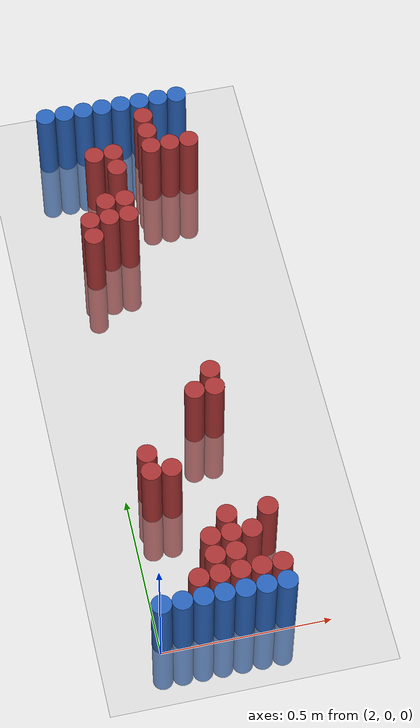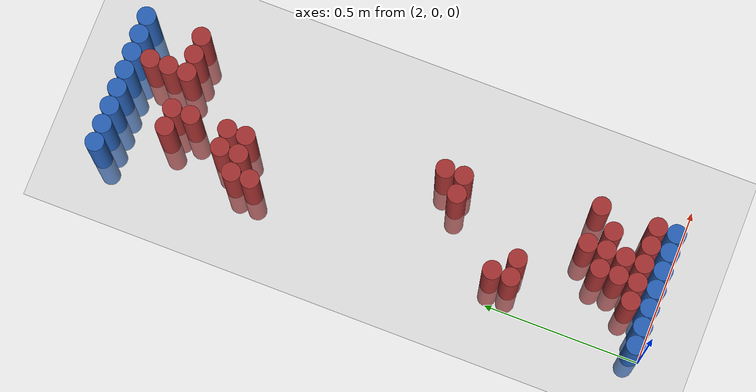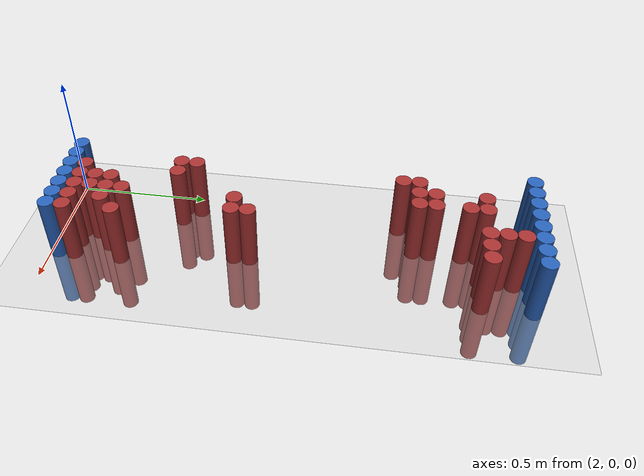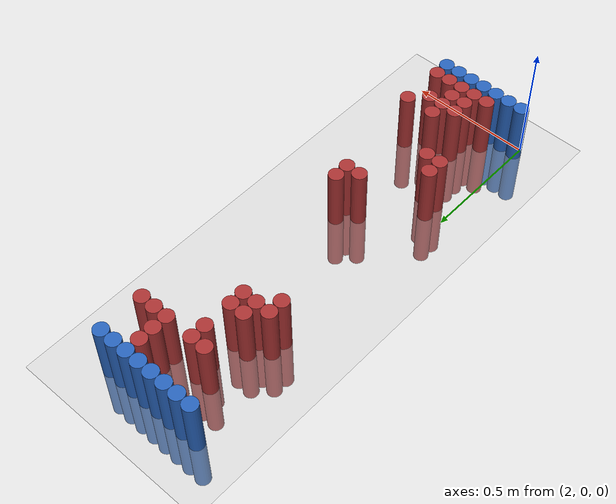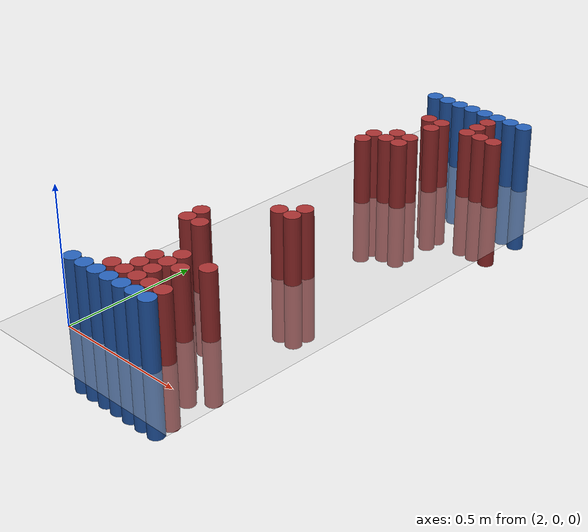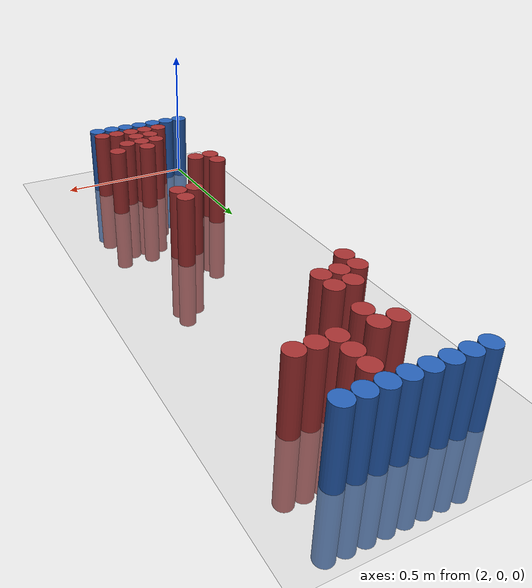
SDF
<sdf version="1.6">
 <world name="default">
  <model name="ground_plane">
   <static>1</static>
   <link name="link">
    <collision name="collision">
     <geometry><plane><normal>0 0 1</normal><size>100 100</size></plane></geometry>
     <surface><friction><ode><mu>100</mu><mu2>50</mu2></ode></friction></surface>
    </collision>
    <visual name="visual">
     <cast_shadows>0</cast_shadows>
     <geometry><plane><normal>0 0 1</normal><size>100 100</size></plane></geometry>
     <material>
      <script><uri>file://media/materials/scripts/gazebo.material</uri><name>Gazebo/Grey</name></script>
     </material>
    </visual>
   </link>
  </model>
  <model name="unit_cylinder_93">
   <static>1</static>
   <pose>2.010000 0.030000 0.000000 0.000000 0.000000 0.000000</pose>
   <link name="link">
    <inertial>
     <mass>1</mass>
     <inertia><ixx>0.145833</ixx><ixy>0</ixy><ixz>0</ixz><iyy>0.145833</iyy><iyz>0</iyz><izz>0.125</izz></inertia>
    </inertial>
    <collision name="collision">
     <geometry><cylinder><radius>0.030000</radius><length>0.5</length></cylinder></geometry>
    </collision>
    <visual name="visual">
     <geometry><cylinder><radius>0.030000</radius><length>0.5</length></cylinder></geometry>
     <material>
      <ambient>0.152000 0.379000 0.720000 1</ambient>
      <diffuse>0.152000 0.379000 0.720000 1</diffuse>
     </material>
     <material>
      <script><name>Gazebo/Grey</name><uri>file://media/materials/scripts/gazebo.material</uri></script>
     </material>
    </visual>
   </link>
  </model>
  <model name="unit_cylinder_94">
   <static>1</static>
   <pose>2.010000 1.770000 0.000000 0.000000 0.000000 0.000000</pose>
   <link name="link">
    <inertial>
     <mass>1</mass>
     <inertia><ixx>0.145833</ixx><ixy>0</ixy><ixz>0</ixz><iyy>0.145833</iyy><iyz>0</iyz><izz>0.125</izz></inertia>
    </inertial>
    <collision name="collision">
     <geometry><cylinder><radius>0.030000</radius><length>0.5</length></cylinder></geometry>
    </collision>
    <visual name="visual">
     <geometry><cylinder><radius>0.030000</radius><length>0.5</length></cylinder></geometry>
     <material>
      <ambient>0.152000 0.379000 0.720000 1</ambient>
      <diffuse>0.152000 0.379000 0.720000 1</diffuse>
     </material>
     <material>
      <script><name>Gazebo/Grey</name><uri>file://media/materials/scripts/gazebo.material</uri></script>
     </material>
    </visual>
   </link>
  </model>
  <model name="unit_cylinder_95">
   <static>1</static>
   <pose>2.070000 1.770000 0.000000 0.000000 0.000000 0.000000</pose>
   <link name="link">
    <inertial>
     <mass>1</mass>
     <inertia><ixx>0.145833</ixx><ixy>0</ixy><ixz>0</ixz><iyy>0.145833</iyy><iyz>0</iyz><izz>0.125</izz></inertia>
    </inertial>
    <collision name="collision">
     <geometry><cylinder><radius>0.030000</radius><length>0.5</length></cylinder></geometry>
    </collision>
    <visual name="visual">
     <geometry><cylinder><radius>0.030000</radius><length>0.5</length></cylinder></geometry>
     <material>
      <ambient>0.152000 0.379000 0.720000 1</ambient>
      <diffuse>0.152000 0.379000 0.720000 1</diffuse>
     </material>
     <material>
      <script><name>Gazebo/Grey</name><uri>file://media/materials/scripts/gazebo.material</uri></script>
     </material>
    </visual>
   </link>
  </model>
  <model name="unit_cylinder_96">
   <static>1</static>
   <pose>2.130000 1.770000 0.000000 0.000000 0.000000 0.000000</pose>
   <link name="link">
    <inertial>
     <mass>1</mass>
     <inertia><ixx>0.145833</ixx><ixy>0</ixy><ixz>0</ixz><iyy>0.145833</iyy><iyz>0</iyz><izz>0.125</izz></inertia>
    </inertial>
    <collision name="collision">
     <geometry><cylinder><radius>0.030000</radius><length>0.5</length></cylinder></geometry>
    </collision>
    <visual name="visual">
     <geometry><cylinder><radius>0.030000</radius><length>0.5</length></cylinder></geometry>
     <material>
      <ambient>0.152000 0.379000 0.720000 1</ambient>
      <diffuse>0.152000 0.379000 0.720000 1</diffuse>
     </material>
     <material>
      <script><name>Gazebo/Grey</name><uri>file://media/materials/scripts/gazebo.material</uri></script>
     </material>
    </visual>
   </link>
  </model>
  <model name="unit_cylinder_97">
   <static>1</static>
   <pose>2.190000 1.770000 0.000000 0.000000 0.000000 0.000000</pose>
   <link name="link">
    <inertial>
     <mass>1</mass>
     <inertia><ixx>0.145833</ixx><ixy>0</ixy><ixz>0</ixz><iyy>0.145833</iyy><iyz>0</iyz><izz>0.125</izz></inertia>
    </inertial>
    <collision name="collision">
     <geometry><cylinder><radius>0.030000</radius><length>0.5</length></cylinder></geometry>
    </collision>
    <visual name="visual">
     <geometry><cylinder><radius>0.030000</radius><length>0.5</length></cylinder></geometry>
     <material>
      <ambient>0.152000 0.379000 0.720000 1</ambient>
      <diffuse>0.152000 0.379000 0.720000 1</diffuse>
     </material>
     <material>
      <script><name>Gazebo/Grey</name><uri>file://media/materials/scripts/gazebo.material</uri></script>
     </material>
    </visual>
   </link>
  </model>
  <model name="unit_cylinder_98">
   <static>1</static>
   <pose>2.250000 1.770000 0.000000 0.000000 0.000000 0.000000</pose>
   <link name="link">
    <inertial>
     <mass>1</mass>
     <inertia><ixx>0.145833</ixx><ixy>0</ixy><ixz>0</ixz><iyy>0.145833</iyy><iyz>0</iyz><izz>0.125</izz></inertia>
    </inertial>
    <collision name="collision">
     <geometry><cylinder><radius>0.030000</radius><length>0.5</length></cylinder></geometry>
    </collision>
    <visual name="visual">
     <geometry><cylinder><radius>0.030000</radius><length>0.5</length></cylinder></geometry>
     <material>
      <ambient>0.152000 0.379000 0.720000 1</ambient>
      <diffuse>0.152000 0.379000 0.720000 1</diffuse>
     </material>
     <material>
      <script><name>Gazebo/Grey</name><uri>file://media/materials/scripts/gazebo.material</uri></script>
     </material>
    </visual>
   </link>
  </model>
  <model name="unit_cylinder_99">
   <static>1</static>
   <pose>2.310000 1.770000 0.000000 0.000000 0.000000 0.000000</pose>
   <link name="link">
    <inertial>
     <mass>1</mass>
     <inertia><ixx>0.145833</ixx><ixy>0</ixy><ixz>0</ixz><iyy>0.145833</iyy><iyz>0</iyz><izz>0.125</izz></inertia>
    </inertial>
    <collision name="collision">
     <geometry><cylinder><radius>0.030000</radius><length>0.5</length></cylinder></geometry>
    </collision>
    <visual name="visual">
     <geometry><cylinder><radius>0.030000</radius><length>0.5</length></cylinder></geometry>
     <material>
      <ambient>0.152000 0.379000 0.720000 1</ambient>
      <diffuse>0.152000 0.379000 0.720000 1</diffuse>
     </material>
     <material>
      <script><name>Gazebo/Grey</name><uri>file://media/materials/scripts/gazebo.material</uri></script>
     </material>
    </visual>
   </link>
  </model>
  <model name="unit_cylinder_100">
   <static>1</static>
   <pose>2.370000 1.770000 0.000000 0.000000 0.000000 0.000000</pose>
   <link name="link">
    <inertial>
     <mass>1</mass>
     <inertia><ixx>0.145833</ixx><ixy>0</ixy><ixz>0</ixz><iyy>0.145833</iyy><iyz>0</iyz><izz>0.125</izz></inertia>
    </inertial>
    <collision name="collision">
     <geometry><cylinder><radius>0.030000</radius><length>0.5</length></cylinder></geometry>
    </collision>
    <visual name="visual">
     <geometry><cylinder><radius>0.030000</radius><length>0.5</length></cylinder></geometry>
     <material>
      <ambient>0.152000 0.379000 0.720000 1</ambient>
      <diffuse>0.152000 0.379000 0.720000 1</diffuse>
     </material>
     <material>
      <script><name>Gazebo/Grey</name><uri>file://media/materials/scripts/gazebo.material</uri></script>
     </material>
    </visual>
   </link>
  </model>
  <model name="unit_cylinder_101">
   <static>1</static>
   <pose>2.430000 1.770000 0.000000 0.000000 0.000000 0.000000</pose>
   <link name="link">
    <inertial>
     <mass>1</mass>
     <inertia><ixx>0.145833</ixx><ixy>0</ixy><ixz>0</ixz><iyy>0.145833</iyy><iyz>0</iyz><izz>0.125</izz></inertia>
    </inertial>
    <collision name="collision">
     <geometry><cylinder><radius>0.030000</radius><length>0.5</length></cylinder></geometry>
    </collision>
    <visual name="visual">
     <geometry><cylinder><radius>0.030000</radius><length>0.5</length></cylinder></geometry>
     <material>
      <ambient>0.152000 0.379000 0.720000 1</ambient>
      <diffuse>0.152000 0.379000 0.720000 1</diffuse>
     </material>
     <material>
      <script><name>Gazebo/Grey</name><uri>file://media/materials/scripts/gazebo.material</uri></script>
     </material>
    </visual>
   </link>
  </model>
  <model name="unit_cylinder_125">
   <static>1</static>
   <pose>2.310000 1.710000 0.000000 0.000000 0.000000 0.000000</pose>
   <link name="link">
    <inertial>
     <mass>1</mass>
     <inertia><ixx>0.145833</ixx><ixy>0</ixy><ixz>0</ixz><iyy>0.145833</iyy><iyz>0</iyz><izz>0.125</izz></inertia>
    </inertial>
    <collision name="collision">
     <geometry><cylinder><radius>0.030000</radius><length>0.5</length></cylinder></geometry>
    </collision>
    <visual name="visual">
     <geometry><cylinder><radius>0.030000</radius><length>0.5</length></cylinder></geometry>
     <material>
      <ambient>0.648000 0.192000 0.192000 1</ambient>
      <diffuse>0.648000 0.192000 0.192000 1</diffuse>
     </material>
     <material>
      <script><name>Gazebo/Grey</name><uri>file://media/materials/scripts/gazebo.material</uri></script>
     </material>
    </visual>
   </link>
  </model>
  <model name="unit_cylinder_134">
   <static>1</static>
   <pose>2.310000 1.650000 0.000000 0.000000 0.000000 0.000000</pose>
   <link name="link">
    <inertial>
     <mass>1</mass>
     <inertia><ixx>0.145833</ixx><ixy>0</ixy><ixz>0</ixz><iyy>0.145833</iyy><iyz>0</iyz><izz>0.125</izz></inertia>
    </inertial>
    <collision name="collision">
     <geometry><cylinder><radius>0.030000</radius><length>0.5</length></cylinder></geometry>
    </collision>
    <visual name="visual">
     <geometry><cylinder><radius>0.030000</radius><length>0.5</length></cylinder></geometry>
     <material>
      <ambient>0.648000 0.192000 0.192000 1</ambient>
      <diffuse>0.648000 0.192000 0.192000 1</diffuse>
     </material>
     <material>
      <script><name>Gazebo/Grey</name><uri>file://media/materials/scripts/gazebo.material</uri></script>
     </material>
    </visual>
   </link>
  </model>
  <model name="unit_cylinder_140">
   <static>1</static>
   <pose>2.130000 1.590000 0.000000 0.000000 0.000000 0.000000</pose>
   <link name="link">
    <inertial>
     <mass>1</mass>
     <inertia><ixx>0.145833</ixx><ixy>0</ixy><ixz>0</ixz><iyy>0.145833</iyy><iyz>0</iyz><izz>0.125</izz></inertia>
    </inertial>
    <collision name="collision">
     <geometry><cylinder><radius>0.030000</radius><length>0.5</length></cylinder></geometry>
    </collision>
    <visual name="visual">
     <geometry><cylinder><radius>0.030000</radius><length>0.5</length></cylinder></geometry>
     <material>
      <ambient>0.648000 0.192000 0.192000 1</ambient>
      <diffuse>0.648000 0.192000 0.192000 1</diffuse>
     </material>
     <material>
      <script><name>Gazebo/Grey</name><uri>file://media/materials/scripts/gazebo.material</uri></script>
     </material>
    </visual>
   </link>
  </model>
  <model name="unit_cylinder_141">
   <static>1</static>
   <pose>2.190000 1.590000 0.000000 0.000000 0.000000 0.000000</pose>
   <link name="link">
    <inertial>
     <mass>1</mass>
     <inertia><ixx>0.145833</ixx><ixy>0</ixy><ixz>0</ixz><iyy>0.145833</iyy><iyz>0</iyz><izz>0.125</izz></inertia>
    </inertial>
    <collision name="collision">
     <geometry><cylinder><radius>0.030000</radius><length>0.5</length></cylinder></geometry>
    </collision>
    <visual name="visual">
     <geometry><cylinder><radius>0.030000</radius><length>0.5</length></cylinder></geometry>
     <material>
      <ambient>0.648000 0.192000 0.192000 1</ambient>
      <diffuse>0.648000 0.192000 0.192000 1</diffuse>
     </material>
     <material>
      <script><name>Gazebo/Grey</name><uri>file://media/materials/scripts/gazebo.material</uri></script>
     </material>
    </visual>
   </link>
  </model>
  <model name="unit_cylinder_142">
   <static>1</static>
   <pose>2.310000 1.590000 0.000000 0.000000 0.000000 0.000000</pose>
   <link name="link">
    <inertial>
     <mass>1</mass>
     <inertia><ixx>0.145833</ixx><ixy>0</ixy><ixz>0</ixz><iyy>0.145833</iyy><iyz>0</iyz><izz>0.125</izz></inertia>
    </inertial>
    <collision name="collision">
     <geometry><cylinder><radius>0.030000</radius><length>0.5</length></cylinder></geometry>
    </collision>
    <visual name="visual">
     <geometry><cylinder><radius>0.030000</radius><length>0.5</length></cylinder></geometry>
     <material>
      <ambient>0.648000 0.192000 0.192000 1</ambient>
      <diffuse>0.648000 0.192000 0.192000 1</diffuse>
     </material>
     <material>
      <script><name>Gazebo/Grey</name><uri>file://media/materials/scripts/gazebo.material</uri></script>
     </material>
    </visual>
   </link>
  </model>
  <model name="unit_cylinder_143">
   <static>1</static>
   <pose>2.370000 1.590000 0.000000 0.000000 0.000000 0.000000</pose>
   <link name="link">
    <inertial>
     <mass>1</mass>
     <inertia><ixx>0.145833</ixx><ixy>0</ixy><ixz>0</ixz><iyy>0.145833</iyy><iyz>0</iyz><izz>0.125</izz></inertia>
    </inertial>
    <collision name="collision">
     <geometry><cylinder><radius>0.030000</radius><length>0.5</length></cylinder></geometry>
    </collision>
    <visual name="visual">
     <geometry><cylinder><radius>0.030000</radius><length>0.5</length></cylinder></geometry>
     <material>
      <ambient>0.648000 0.192000 0.192000 1</ambient>
      <diffuse>0.648000 0.192000 0.192000 1</diffuse>
     </material>
     <material>
      <script><name>Gazebo/Grey</name><uri>file://media/materials/scripts/gazebo.material</uri></script>
     </material>
    </visual>
   </link>
  </model>
  <model name="unit_cylinder_144">
   <static>1</static>
   <pose>2.430000 1.590000 0.000000 0.000000 0.000000 0.000000</pose>
   <link name="link">
    <inertial>
     <mass>1</mass>
     <inertia><ixx>0.145833</ixx><ixy>0</ixy><ixz>0</ixz><iyy>0.145833</iyy><iyz>0</iyz><izz>0.125</izz></inertia>
    </inertial>
    <collision name="collision">
     <geometry><cylinder><radius>0.030000</radius><length>0.5</length></cylinder></geometry>
    </collision>
    <visual name="visual">
     <geometry><cylinder><radius>0.030000</radius><length>0.5</length></cylinder></geometry>
     <material>
      <ambient>0.648000 0.192000 0.192000 1</ambient>
      <diffuse>0.648000 0.192000 0.192000 1</diffuse>
     </material>
     <material>
      <script><name>Gazebo/Grey</name><uri>file://media/materials/scripts/gazebo.material</uri></script>
     </material>
    </visual>
   </link>
  </model>
  <model name="unit_cylinder_152">
   <static>1</static>
   <pose>2.190000 1.530000 0.000000 0.000000 0.000000 0.000000</pose>
   <link name="link">
    <inertial>
     <mass>1</mass>
     <inertia><ixx>0.145833</ixx><ixy>0</ixy><ixz>0</ixz><iyy>0.145833</iyy><iyz>0</iyz><izz>0.125</izz></inertia>
    </inertial>
    <collision name="collision">
     <geometry><cylinder><radius>0.030000</radius><length>0.5</length></cylinder></geometry>
    </collision>
    <visual name="visual">
     <geometry><cylinder><radius>0.030000</radius><length>0.5</length></cylinder></geometry>
     <material>
      <ambient>0.648000 0.192000 0.192000 1</ambient>
      <diffuse>0.648000 0.192000 0.192000 1</diffuse>
     </material>
     <material>
      <script><name>Gazebo/Grey</name><uri>file://media/materials/scripts/gazebo.material</uri></script>
     </material>
    </visual>
   </link>
  </model>
  <model name="unit_cylinder_170">
   <static>1</static>
   <pose>2.130000 1.410000 0.000000 0.000000 0.000000 0.000000</pose>
   <link name="link">
    <inertial>
     <mass>1</mass>
     <inertia><ixx>0.145833</ixx><ixy>0</ixy><ixz>0</ixz><iyy>0.145833</iyy><iyz>0</iyz><izz>0.125</izz></inertia>
    </inertial>
    <collision name="collision">
     <geometry><cylinder><radius>0.030000</radius><length>0.5</length></cylinder></geometry>
    </collision>
    <visual name="visual">
     <geometry><cylinder><radius>0.030000</radius><length>0.5</length></cylinder></geometry>
     <material>
      <ambient>0.648000 0.192000 0.192000 1</ambient>
      <diffuse>0.648000 0.192000 0.192000 1</diffuse>
     </material>
     <material>
      <script><name>Gazebo/Grey</name><uri>file://media/materials/scripts/gazebo.material</uri></script>
     </material>
    </visual>
   </link>
  </model>
  <model name="unit_cylinder_171">
   <static>1</static>
   <pose>2.190000 1.410000 0.000000 0.000000 0.000000 0.000000</pose>
   <link name="link">
    <inertial>
     <mass>1</mass>
     <inertia><ixx>0.145833</ixx><ixy>0</ixy><ixz>0</ixz><iyy>0.145833</iyy><iyz>0</iyz><izz>0.125</izz></inertia>
    </inertial>
    <collision name="collision">
     <geometry><cylinder><radius>0.030000</radius><length>0.5</length></cylinder></geometry>
    </collision>
    <visual name="visual">
     <geometry><cylinder><radius>0.030000</radius><length>0.5</length></cylinder></geometry>
     <material>
      <ambient>0.648000 0.192000 0.192000 1</ambient>
      <diffuse>0.648000 0.192000 0.192000 1</diffuse>
     </material>
     <material>
      <script><name>Gazebo/Grey</name><uri>file://media/materials/scripts/gazebo.material</uri></script>
     </material>
    </visual>
   </link>
  </model>
  <model name="unit_cylinder_176">
   <static>1</static>
   <pose>2.070000 1.350000 0.000000 0.000000 0.000000 0.000000</pose>
   <link name="link">
    <inertial>
     <mass>1</mass>
     <inertia><ixx>0.145833</ixx><ixy>0</ixy><ixz>0</ixz><iyy>0.145833</iyy><iyz>0</iyz><izz>0.125</izz></inertia>
    </inertial>
    <collision name="collision">
     <geometry><cylinder><radius>0.030000</radius><length>0.5</length></cylinder></geometry>
    </collision>
    <visual name="visual">
     <geometry><cylinder><radius>0.030000</radius><length>0.5</length></cylinder></geometry>
     <material>
      <ambient>0.648000 0.192000 0.192000 1</ambient>
      <diffuse>0.648000 0.192000 0.192000 1</diffuse>
     </material>
     <material>
      <script><name>Gazebo/Grey</name><uri>file://media/materials/scripts/gazebo.material</uri></script>
     </material>
    </visual>
   </link>
  </model>
  <model name="unit_cylinder_177">
   <static>1</static>
   <pose>2.130000 1.350000 0.000000 0.000000 0.000000 0.000000</pose>
   <link name="link">
    <inertial>
     <mass>1</mass>
     <inertia><ixx>0.145833</ixx><ixy>0</ixy><ixz>0</ixz><iyy>0.145833</iyy><iyz>0</iyz><izz>0.125</izz></inertia>
    </inertial>
    <collision name="collision">
     <geometry><cylinder><radius>0.030000</radius><length>0.5</length></cylinder></geometry>
    </collision>
    <visual name="visual">
     <geometry><cylinder><radius>0.030000</radius><length>0.5</length></cylinder></geometry>
     <material>
      <ambient>0.648000 0.192000 0.192000 1</ambient>
      <diffuse>0.648000 0.192000 0.192000 1</diffuse>
     </material>
     <material>
      <script><name>Gazebo/Grey</name><uri>file://media/materials/scripts/gazebo.material</uri></script>
     </material>
    </visual>
   </link>
  </model>
  <model name="unit_cylinder_178">
   <static>1</static>
   <pose>2.190000 1.350000 0.000000 0.000000 0.000000 0.000000</pose>
   <link name="link">
    <inertial>
     <mass>1</mass>
     <inertia><ixx>0.145833</ixx><ixy>0</ixy><ixz>0</ixz><iyy>0.145833</iyy><iyz>0</iyz><izz>0.125</izz></inertia>
    </inertial>
    <collision name="collision">
     <geometry><cylinder><radius>0.030000</radius><length>0.5</length></cylinder></geometry>
    </collision>
    <visual name="visual">
     <geometry><cylinder><radius>0.030000</radius><length>0.5</length></cylinder></geometry>
     <material>
      <ambient>0.648000 0.192000 0.192000 1</ambient>
      <diffuse>0.648000 0.192000 0.192000 1</diffuse>
     </material>
     <material>
      <script><name>Gazebo/Grey</name><uri>file://media/materials/scripts/gazebo.material</uri></script>
     </material>
    </visual>
   </link>
  </model>
  <model name="unit_cylinder_183">
   <static>1</static>
   <pose>2.070000 1.290000 0.000000 0.000000 0.000000 0.000000</pose>
   <link name="link">
    <inertial>
     <mass>1</mass>
     <inertia><ixx>0.145833</ixx><ixy>0</ixy><ixz>0</ixz><iyy>0.145833</iyy><iyz>0</iyz><izz>0.125</izz></inertia>
    </inertial>
    <collision name="collision">
     <geometry><cylinder><radius>0.030000</radius><length>0.5</length></cylinder></geometry>
    </collision>
    <visual name="visual">
     <geometry><cylinder><radius>0.030000</radius><length>0.5</length></cylinder></geometry>
     <material>
      <ambient>0.648000 0.192000 0.192000 1</ambient>
      <diffuse>0.648000 0.192000 0.192000 1</diffuse>
     </material>
     <material>
      <script><name>Gazebo/Grey</name><uri>file://media/materials/scripts/gazebo.material</uri></script>
     </material>
    </visual>
   </link>
  </model>
  <model name="unit_cylinder_190">
   <static>1</static>
   <pose>2.310000 0.750000 0.000000 0.000000 0.000000 0.000000</pose>
   <link name="link">
    <inertial>
     <mass>1</mass>
     <inertia><ixx>0.145833</ixx><ixy>0</ixy><ixz>0</ixz><iyy>0.145833</iyy><iyz>0</iyz><izz>0.125</izz></inertia>
    </inertial>
    <collision name="collision">
     <geometry><cylinder><radius>0.030000</radius><length>0.5</length></cylinder></geometry>
    </collision>
    <visual name="visual">
     <geometry><cylinder><radius>0.030000</radius><length>0.5</length></cylinder></geometry>
     <material>
      <ambient>0.648000 0.192000 0.192000 1</ambient>
      <diffuse>0.648000 0.192000 0.192000 1</diffuse>
     </material>
     <material>
      <script><name>Gazebo/Grey</name><uri>file://media/materials/scripts/gazebo.material</uri></script>
     </material>
    </visual>
   </link>
  </model>
  <model name="unit_cylinder_193">
   <static>1</static>
   <pose>2.250000 0.690000 0.000000 0.000000 0.000000 0.000000</pose>
   <link name="link">
    <inertial>
     <mass>1</mass>
     <inertia><ixx>0.145833</ixx><ixy>0</ixy><ixz>0</ixz><iyy>0.145833</iyy><iyz>0</iyz><izz>0.125</izz></inertia>
    </inertial>
    <collision name="collision">
     <geometry><cylinder><radius>0.030000</radius><length>0.5</length></cylinder></geometry>
    </collision>
    <visual name="visual">
     <geometry><cylinder><radius>0.030000</radius><length>0.5</length></cylinder></geometry>
     <material>
      <ambient>0.648000 0.192000 0.192000 1</ambient>
      <diffuse>0.648000 0.192000 0.192000 1</diffuse>
     </material>
     <material>
      <script><name>Gazebo/Grey</name><uri>file://media/materials/scripts/gazebo.material</uri></script>
     </material>
    </visual>
   </link>
  </model>
  <model name="unit_cylinder_194">
   <static>1</static>
   <pose>2.310000 0.690000 0.000000 0.000000 0.000000 0.000000</pose>
   <link name="link">
    <inertial>
     <mass>1</mass>
     <inertia><ixx>0.145833</ixx><ixy>0</ixy><ixz>0</ixz><iyy>0.145833</iyy><iyz>0</iyz><izz>0.125</izz></inertia>
    </inertial>
    <collision name="collision">
     <geometry><cylinder><radius>0.030000</radius><length>0.5</length></cylinder></geometry>
    </collision>
    <visual name="visual">
     <geometry><cylinder><radius>0.030000</radius><length>0.5</length></cylinder></geometry>
     <material>
      <ambient>0.648000 0.192000 0.192000 1</ambient>
      <diffuse>0.648000 0.192000 0.192000 1</diffuse>
     </material>
     <material>
      <script><name>Gazebo/Grey</name><uri>file://media/materials/scripts/gazebo.material</uri></script>
     </material>
    </visual>
   </link>
  </model>
  <model name="unit_cylinder_200">
   <static>1</static>
   <pose>2.070000 0.510000 0.000000 0.000000 0.000000 0.000000</pose>
   <link name="link">
    <inertial>
     <mass>1</mass>
     <inertia><ixx>0.145833</ixx><ixy>0</ixy><ixz>0</ixz><iyy>0.145833</iyy><iyz>0</iyz><izz>0.125</izz></inertia>
    </inertial>
    <collision name="collision">
     <geometry><cylinder><radius>0.030000</radius><length>0.5</length></cylinder></geometry>
    </collision>
    <visual name="visual">
     <geometry><cylinder><radius>0.030000</radius><length>0.5</length></cylinder></geometry>
     <material>
      <ambient>0.648000 0.192000 0.192000 1</ambient>
      <diffuse>0.648000 0.192000 0.192000 1</diffuse>
     </material>
     <material>
      <script><name>Gazebo/Grey</name><uri>file://media/materials/scripts/gazebo.material</uri></script>
     </material>
    </visual>
   </link>
  </model>
  <model name="unit_cylinder_203">
   <static>1</static>
   <pose>2.070000 0.450000 0.000000 0.000000 0.000000 0.000000</pose>
   <link name="link">
    <inertial>
     <mass>1</mass>
     <inertia><ixx>0.145833</ixx><ixy>0</ixy><ixz>0</ixz><iyy>0.145833</iyy><iyz>0</iyz><izz>0.125</izz></inertia>
    </inertial>
    <collision name="collision">
     <geometry><cylinder><radius>0.030000</radius><length>0.5</length></cylinder></geometry>
    </collision>
    <visual name="visual">
     <geometry><cylinder><radius>0.030000</radius><length>0.5</length></cylinder></geometry>
     <material>
      <ambient>0.648000 0.192000 0.192000 1</ambient>
      <diffuse>0.648000 0.192000 0.192000 1</diffuse>
     </material>
     <material>
      <script><name>Gazebo/Grey</name><uri>file://media/materials/scripts/gazebo.material</uri></script>
     </material>
    </visual>
   </link>
  </model>
  <model name="unit_cylinder_204">
   <static>1</static>
   <pose>2.130000 0.450000 0.000000 0.000000 0.000000 0.000000</pose>
   <link name="link">
    <inertial>
     <mass>1</mass>
     <inertia><ixx>0.145833</ixx><ixy>0</ixy><ixz>0</ixz><iyy>0.145833</iyy><iyz>0</iyz><izz>0.125</izz></inertia>
    </inertial>
    <collision name="collision">
     <geometry><cylinder><radius>0.030000</radius><length>0.5</length></cylinder></geometry>
    </collision>
    <visual name="visual">
     <geometry><cylinder><radius>0.030000</radius><length>0.5</length></cylinder></geometry>
     <material>
      <ambient>0.648000 0.192000 0.192000 1</ambient>
      <diffuse>0.648000 0.192000 0.192000 1</diffuse>
     </material>
     <material>
      <script><name>Gazebo/Grey</name><uri>file://media/materials/scripts/gazebo.material</uri></script>
     </material>
    </visual>
   </link>
  </model>
  <model name="unit_cylinder_213">
   <static>1</static>
   <pose>2.250000 0.270000 0.000000 0.000000 0.000000 0.000000</pose>
   <link name="link">
    <inertial>
     <mass>1</mass>
     <inertia><ixx>0.145833</ixx><ixy>0</ixy><ixz>0</ixz><iyy>0.145833</iyy><iyz>0</iyz><izz>0.125</izz></inertia>
    </inertial>
    <collision name="collision">
     <geometry><cylinder><radius>0.030000</radius><length>0.5</length></cylinder></geometry>
    </collision>
    <visual name="visual">
     <geometry><cylinder><radius>0.030000</radius><length>0.5</length></cylinder></geometry>
     <material>
      <ambient>0.648000 0.192000 0.192000 1</ambient>
      <diffuse>0.648000 0.192000 0.192000 1</diffuse>
     </material>
     <material>
      <script><name>Gazebo/Grey</name><uri>file://media/materials/scripts/gazebo.material</uri></script>
     </material>
    </visual>
   </link>
  </model>
  <model name="unit_cylinder_214">
   <static>1</static>
   <pose>2.370000 0.270000 0.000000 0.000000 0.000000 0.000000</pose>
   <link name="link">
    <inertial>
     <mass>1</mass>
     <inertia><ixx>0.145833</ixx><ixy>0</ixy><ixz>0</ixz><iyy>0.145833</iyy><iyz>0</iyz><izz>0.125</izz></inertia>
    </inertial>
    <collision name="collision">
     <geometry><cylinder><radius>0.030000</radius><length>0.5</length></cylinder></geometry>
    </collision>
    <visual name="visual">
     <geometry><cylinder><radius>0.030000</radius><length>0.5</length></cylinder></geometry>
     <material>
      <ambient>0.648000 0.192000 0.192000 1</ambient>
      <diffuse>0.648000 0.192000 0.192000 1</diffuse>
     </material>
     <material>
      <script><name>Gazebo/Grey</name><uri>file://media/materials/scripts/gazebo.material</uri></script>
     </material>
    </visual>
   </link>
  </model>
  <model name="unit_cylinder_222">
   <static>1</static>
   <pose>2.190000 0.210000 0.000000 0.000000 0.000000 0.000000</pose>
   <link name="link">
    <inertial>
     <mass>1</mass>
     <inertia><ixx>0.145833</ixx><ixy>0</ixy><ixz>0</ixz><iyy>0.145833</iyy><iyz>0</iyz><izz>0.125</izz></inertia>
    </inertial>
    <collision name="collision">
     <geometry><cylinder><radius>0.030000</radius><length>0.5</length></cylinder></geometry>
    </collision>
    <visual name="visual">
     <geometry><cylinder><radius>0.030000</radius><length>0.5</length></cylinder></geometry>
     <material>
      <ambient>0.648000 0.192000 0.192000 1</ambient>
      <diffuse>0.648000 0.192000 0.192000 1</diffuse>
     </material>
     <material>
      <script><name>Gazebo/Grey</name><uri>file://media/materials/scripts/gazebo.material</uri></script>
     </material>
    </visual>
   </link>
  </model>
  <model name="unit_cylinder_223">
   <static>1</static>
   <pose>2.250000 0.210000 0.000000 0.000000 0.000000 0.000000</pose>
   <link name="link">
    <inertial>
     <mass>1</mass>
     <inertia><ixx>0.145833</ixx><ixy>0</ixy><ixz>0</ixz><iyy>0.145833</iyy><iyz>0</iyz><izz>0.125</izz></inertia>
    </inertial>
    <collision name="collision">
     <geometry><cylinder><radius>0.030000</radius><length>0.5</length></cylinder></geometry>
    </collision>
    <visual name="visual">
     <geometry><cylinder><radius>0.030000</radius><length>0.5</length></cylinder></geometry>
     <material>
      <ambient>0.648000 0.192000 0.192000 1</ambient>
      <diffuse>0.648000 0.192000 0.192000 1</diffuse>
     </material>
     <material>
      <script><name>Gazebo/Grey</name><uri>file://media/materials/scripts/gazebo.material</uri></script>
     </material>
    </visual>
   </link>
  </model>
  <model name="unit_cylinder_224">
   <static>1</static>
   <pose>2.310000 0.210000 0.000000 0.000000 0.000000 0.000000</pose>
   <link name="link">
    <inertial>
     <mass>1</mass>
     <inertia><ixx>0.145833</ixx><ixy>0</ixy><ixz>0</ixz><iyy>0.145833</iyy><iyz>0</iyz><izz>0.125</izz></inertia>
    </inertial>
    <collision name="collision">
     <geometry><cylinder><radius>0.030000</radius><length>0.5</length></cylinder></geometry>
    </collision>
    <visual name="visual">
     <geometry><cylinder><radius>0.030000</radius><length>0.5</length></cylinder></geometry>
     <material>
      <ambient>0.648000 0.192000 0.192000 1</ambient>
      <diffuse>0.648000 0.192000 0.192000 1</diffuse>
     </material>
     <material>
      <script><name>Gazebo/Grey</name><uri>file://media/materials/scripts/gazebo.material</uri></script>
     </material>
    </visual>
   </link>
  </model>
  <model name="unit_cylinder_233">
   <static>1</static>
   <pose>2.190000 0.150000 0.000000 0.000000 0.000000 0.000000</pose>
   <link name="link">
    <inertial>
     <mass>1</mass>
     <inertia><ixx>0.145833</ixx><ixy>0</ixy><ixz>0</ixz><iyy>0.145833</iyy><iyz>0</iyz><izz>0.125</izz></inertia>
    </inertial>
    <collision name="collision">
     <geometry><cylinder><radius>0.030000</radius><length>0.5</length></cylinder></geometry>
    </collision>
    <visual name="visual">
     <geometry><cylinder><radius>0.030000</radius><length>0.5</length></cylinder></geometry>
     <material>
      <ambient>0.648000 0.192000 0.192000 1</ambient>
      <diffuse>0.648000 0.192000 0.192000 1</diffuse>
     </material>
     <material>
      <script><name>Gazebo/Grey</name><uri>file://media/materials/scripts/gazebo.material</uri></script>
     </material>
    </visual>
   </link>
  </model>
  <model name="unit_cylinder_234">
   <static>1</static>
   <pose>2.250000 0.150000 0.000000 0.000000 0.000000 0.000000</pose>
   <link name="link">
    <inertial>
     <mass>1</mass>
     <inertia><ixx>0.145833</ixx><ixy>0</ixy><ixz>0</ixz><iyy>0.145833</iyy><iyz>0</iyz><izz>0.125</izz></inertia>
    </inertial>
    <collision name="collision">
     <geometry><cylinder><radius>0.030000</radius><length>0.5</length></cylinder></geometry>
    </collision>
    <visual name="visual">
     <geometry><cylinder><radius>0.030000</radius><length>0.5</length></cylinder></geometry>
     <material>
      <ambient>0.648000 0.192000 0.192000 1</ambient>
      <diffuse>0.648000 0.192000 0.192000 1</diffuse>
     </material>
     <material>
      <script><name>Gazebo/Grey</name><uri>file://media/materials/scripts/gazebo.material</uri></script>
     </material>
    </visual>
   </link>
  </model>
  <model name="unit_cylinder_237">
   <static>1</static>
   <pose>2.130000 0.090000 0.000000 0.000000 0.000000 0.000000</pose>
   <link name="link">
    <inertial>
     <mass>1</mass>
     <inertia><ixx>0.145833</ixx><ixy>0</ixy><ixz>0</ixz><iyy>0.145833</iyy><iyz>0</iyz><izz>0.125</izz></inertia>
    </inertial>
    <collision name="collision">
     <geometry><cylinder><radius>0.030000</radius><length>0.5</length></cylinder></geometry>
    </collision>
    <visual name="visual">
     <geometry><cylinder><radius>0.030000</radius><length>0.5</length></cylinder></geometry>
     <material>
      <ambient>0.648000 0.192000 0.192000 1</ambient>
      <diffuse>0.648000 0.192000 0.192000 1</diffuse>
     </material>
     <material>
      <script><name>Gazebo/Grey</name><uri>file://media/materials/scripts/gazebo.material</uri></script>
     </material>
    </visual>
   </link>
  </model>
  <model name="unit_cylinder_238">
   <static>1</static>
   <pose>2.190000 0.090000 0.000000 0.000000 0.000000 0.000000</pose>
   <link name="link">
    <inertial>
     <mass>1</mass>
     <inertia><ixx>0.145833</ixx><ixy>0</ixy><ixz>0</ixz><iyy>0.145833</iyy><iyz>0</iyz><izz>0.125</izz></inertia>
    </inertial>
    <collision name="collision">
     <geometry><cylinder><radius>0.030000</radius><length>0.5</length></cylinder></geometry>
    </collision>
    <visual name="visual">
     <geometry><cylinder><radius>0.030000</radius><length>0.5</length></cylinder></geometry>
     <material>
      <ambient>0.648000 0.192000 0.192000 1</ambient>
      <diffuse>0.648000 0.192000 0.192000 1</diffuse>
     </material>
     <material>
      <script><name>Gazebo/Grey</name><uri>file://media/materials/scripts/gazebo.material</uri></script>
     </material>
    </visual>
   </link>
  </model>
  <model name="unit_cylinder_239">
   <static>1</static>
   <pose>2.250000 0.090000 0.000000 0.000000 0.000000 0.000000</pose>
   <link name="link">
    <inertial>
     <mass>1</mass>
     <inertia><ixx>0.145833</ixx><ixy>0</ixy><ixz>0</ixz><iyy>0.145833</iyy><iyz>0</iyz><izz>0.125</izz></inertia>
    </inertial>
    <collision name="collision">
     <geometry><cylinder><radius>0.030000</radius><length>0.5</length></cylinder></geometry>
    </collision>
    <visual name="visual">
     <geometry><cylinder><radius>0.030000</radius><length>0.5</length></cylinder></geometry>
     <material>
      <ambient>0.648000 0.192000 0.192000 1</ambient>
      <diffuse>0.648000 0.192000 0.192000 1</diffuse>
     </material>
     <material>
      <script><name>Gazebo/Grey</name><uri>file://media/materials/scripts/gazebo.material</uri></script>
     </material>
    </visual>
   </link>
  </model>
  <model name="unit_cylinder_240">
   <static>1</static>
   <pose>2.310000 0.090000 0.000000 0.000000 0.000000 0.000000</pose>
   <link name="link">
    <inertial>
     <mass>1</mass>
     <inertia><ixx>0.145833</ixx><ixy>0</ixy><ixz>0</ixz><iyy>0.145833</iyy><iyz>0</iyz><izz>0.125</izz></inertia>
    </inertial>
    <collision name="collision">
     <geometry><cylinder><radius>0.030000</radius><length>0.5</length></cylinder></geometry>
    </collision>
    <visual name="visual">
     <geometry><cylinder><radius>0.030000</radius><length>0.5</length></cylinder></geometry>
     <material>
      <ambient>0.648000 0.192000 0.192000 1</ambient>
      <diffuse>0.648000 0.192000 0.192000 1</diffuse>
     </material>
     <material>
      <script><name>Gazebo/Grey</name><uri>file://media/materials/scripts/gazebo.material</uri></script>
     </material>
    </visual>
   </link>
  </model>
  <model name="unit_cylinder_241">
   <static>1</static>
   <pose>2.370000 0.090000 0.000000 0.000000 0.000000 0.000000</pose>
   <link name="link">
    <inertial>
     <mass>1</mass>
     <inertia><ixx>0.145833</ixx><ixy>0</ixy><ixz>0</ixz><iyy>0.145833</iyy><iyz>0</iyz><izz>0.125</izz></inertia>
    </inertial>
    <collision name="collision">
     <geometry><cylinder><radius>0.030000</radius><length>0.5</length></cylinder></geometry>
    </collision>
    <visual name="visual">
     <geometry><cylinder><radius>0.030000</radius><length>0.5</length></cylinder></geometry>
     <material>
      <ambient>0.648000 0.192000 0.192000 1</ambient>
      <diffuse>0.648000 0.192000 0.192000 1</diffuse>
     </material>
     <material>
      <script><name>Gazebo/Grey</name><uri>file://media/materials/scripts/gazebo.material</uri></script>
     </material>
    </visual>
   </link>
  </model>
  <model name="unit_cylinder_250">
   <static>1</static>
   <pose>2.070000 0.030000 0.000000 0.000000 0.000000 0.000000</pose>
   <link name="link">
    <inertial>
     <mass>1</mass>
     <inertia><ixx>0.145833</ixx><ixy>0</ixy><ixz>0</ixz><iyy>0.145833</iyy><iyz>0</iyz><izz>0.125</izz></inertia>
    </inertial>
    <collision name="collision">
     <geometry><cylinder><radius>0.030000</radius><length>0.5</length></cylinder></geometry>
    </collision>
    <visual name="visual">
     <geometry><cylinder><radius>0.030000</radius><length>0.5</length></cylinder></geometry>
     <material>
      <ambient>0.152000 0.379000 0.720000 1</ambient>
      <diffuse>0.152000 0.379000 0.720000 1</diffuse>
     </material>
     <material>
      <script><name>Gazebo/Grey</name><uri>file://media/materials/scripts/gazebo.material</uri></script>
     </material>
    </visual>
   </link>
  </model>
  <model name="unit_cylinder_251">
   <static>1</static>
   <pose>2.130000 0.030000 0.000000 0.000000 0.000000 0.000000</pose>
   <link name="link">
    <inertial>
     <mass>1</mass>
     <inertia><ixx>0.145833</ixx><ixy>0</ixy><ixz>0</ixz><iyy>0.145833</iyy><iyz>0</iyz><izz>0.125</izz></inertia>
    </inertial>
    <collision name="collision">
     <geometry><cylinder><radius>0.030000</radius><length>0.5</length></cylinder></geometry>
    </collision>
    <visual name="visual">
     <geometry><cylinder><radius>0.030000</radius><length>0.5</length></cylinder></geometry>
     <material>
      <ambient>0.152000 0.379000 0.720000 1</ambient>
      <diffuse>0.152000 0.379000 0.720000 1</diffuse>
     </material>
     <material>
      <script><name>Gazebo/Grey</name><uri>file://media/materials/scripts/gazebo.material</uri></script>
     </material>
    </visual>
   </link>
  </model>
  <model name="unit_cylinder_252">
   <static>1</static>
   <pose>2.190000 0.030000 0.000000 0.000000 0.000000 0.000000</pose>
   <link name="link">
    <inertial>
     <mass>1</mass>
     <inertia><ixx>0.145833</ixx><ixy>0</ixy><ixz>0</ixz><iyy>0.145833</iyy><iyz>0</iyz><izz>0.125</izz></inertia>
    </inertial>
    <collision name="collision">
     <geometry><cylinder><radius>0.030000</radius><length>0.5</length></cylinder></geometry>
    </collision>
    <visual name="visual">
     <geometry><cylinder><radius>0.030000</radius><length>0.5</length></cylinder></geometry>
     <material>
      <ambient>0.152000 0.379000 0.720000 1</ambient>
      <diffuse>0.152000 0.379000 0.720000 1</diffuse>
     </material>
     <material>
      <script><name>Gazebo/Grey</name><uri>file://media/materials/scripts/gazebo.material</uri></script>
     </material>
    </visual>
   </link>
  </model>
  <model name="unit_cylinder_253">
   <static>1</static>
   <pose>2.250000 0.030000 0.000000 0.000000 0.000000 0.000000</pose>
   <link name="link">
    <inertial>
     <mass>1</mass>
     <inertia><ixx>0.145833</ixx><ixy>0</ixy><ixz>0</ixz><iyy>0.145833</iyy><iyz>0</iyz><izz>0.125</izz></inertia>
    </inertial>
    <collision name="collision">
     <geometry><cylinder><radius>0.030000</radius><length>0.5</length></cylinder></geometry>
    </collision>
    <visual name="visual">
     <geometry><cylinder><radius>0.030000</radius><length>0.5</length></cylinder></geometry>
     <material>
      <ambient>0.152000 0.379000 0.720000 1</ambient>
      <diffuse>0.152000 0.379000 0.720000 1</diffuse>
     </material>
     <material>
      <script><name>Gazebo/Grey</name><uri>file://media/materials/scripts/gazebo.material</uri></script>
     </material>
    </visual>
   </link>
  </model>
  <model name="unit_cylinder_254">
   <static>1</static>
   <pose>2.310000 0.030000 0.000000 0.000000 0.000000 0.000000</pose>
   <link name="link">
    <inertial>
     <mass>1</mass>
     <inertia><ixx>0.145833</ixx><ixy>0</ixy><ixz>0</ixz><iyy>0.145833</iyy><iyz>0</iyz><izz>0.125</izz></inertia>
    </inertial>
    <collision name="collision">
     <geometry><cylinder><radius>0.030000</radius><length>0.5</length></cylinder></geometry>
    </collision>
    <visual name="visual">
     <geometry><cylinder><radius>0.030000</radius><length>0.5</length></cylinder></geometry>
     <material>
      <ambient>0.152000 0.379000 0.720000 1</ambient>
      <diffuse>0.152000 0.379000 0.720000 1</diffuse>
     </material>
     <material>
      <script><name>Gazebo/Grey</name><uri>file://media/materials/scripts/gazebo.material</uri></script>
     </material>
    </visual>
   </link>
  </model>
  <model name="unit_cylinder_255">
   <static>1</static>
   <pose>2.370000 0.030000 0.000000 0.000000 0.000000 0.000000</pose>
   <link name="link">
    <inertial>
     <mass>1</mass>
     <inertia><ixx>0.145833</ixx><ixy>0</ixy><ixz>0</ixz><iyy>0.145833</iyy><iyz>0</iyz><izz>0.125</izz></inertia>
    </inertial>
    <collision name="collision">
     <geometry><cylinder><radius>0.030000</radius><length>0.5</length></cylinder></geometry>
    </collision>
    <visual name="visual">
     <geometry><cylinder><radius>0.030000</radius><length>0.5</length></cylinder></geometry>
     <material>
      <ambient>0.152000 0.379000 0.720000 1</ambient>
      <diffuse>0.152000 0.379000 0.720000 1</diffuse>
     </material>
     <material>
      <script><name>Gazebo/Grey</name><uri>file://media/materials/scripts/gazebo.material</uri></script>
     </material>
    </visual>
   </link>
  </model>
 </world>
</sdf>
